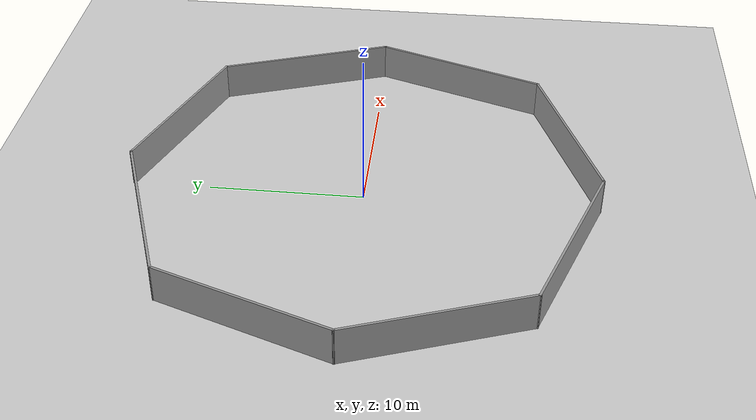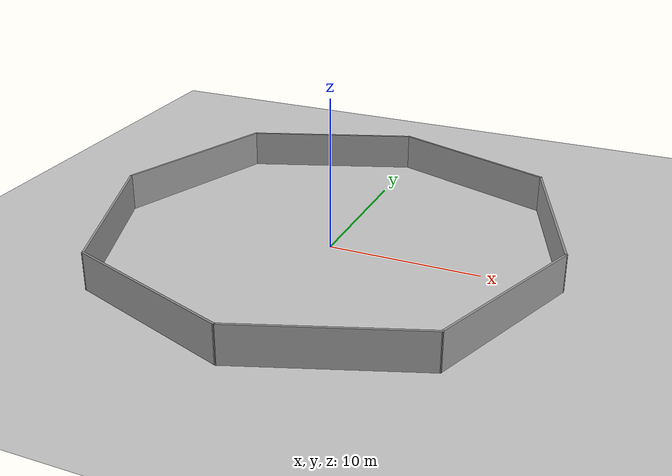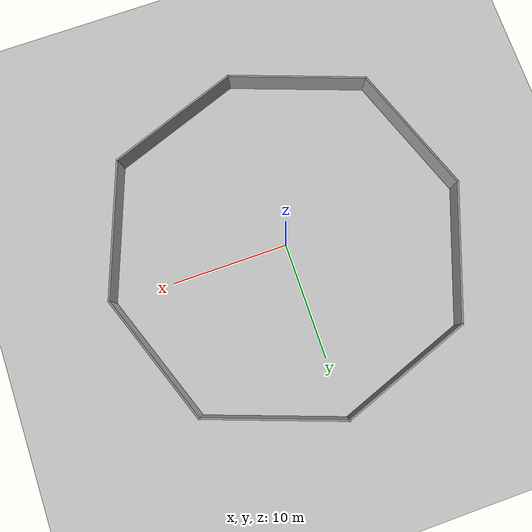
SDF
<?xml version="1.0" ?>
<sdf version="1.6">
	<world name="default">
		<include>
			<uri>model://ground_plane</uri>
		</include>
		<include>
			<uri>model://sun</uri>
		</include>

		<!-- Model -->
	    <model name="cat_octagon">
	      <include>
	            <static>true</static>
	        <uri>model://cat_octagon</uri>
	        <pose> 0 0 0 0 0 0</pose>
	      </include>
	    </model>

	    <!-- Plugin -->
   		<plugin name="cat_plugin" filename="libgazebo_tutorials.so"/>

	</world>
</sdf>

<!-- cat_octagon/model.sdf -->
<sdf version='1.6'>
  <model name='cat_octagon'>
    <pose frame=''>0 0 0 0 -0 0</pose>
    <link name='Wall_10'>
      <collision name='Wall_10_Collision'>
        <geometry>
          <box>
            <size>11.8547 0.15 2.5</size>
          </box>
        </geometry>
        <pose frame=''>0 0 1.25 0 -0 0</pose>
      </collision>
      <visual name='Wall_10_Visual'>
        <pose frame=''>0 0 1.25 0 -0 0</pose>
        <geometry>
          <box>
            <size>11.8547 0.15 2.5</size>
          </box>
        </geometry>
        <material>
          <script>
            <uri>file://media/materials/scripts/gazebo.material</uri>
            <name>Gazebo/Grey</name>
          </script>
          <ambient>1 1 1 1</ambient>
        </material>
        <meta>
          <layer>0</layer>
        </meta>
      </visual>
      <pose frame=''>5.5 13 0 0 -0 -0.348771</pose>
    </link>
    <link name='Wall_11'>
      <collision name='Wall_11_Collision'>
        <geometry>
          <box>
            <size>11.8547 0.15 2.5</size>
          </box>
        </geometry>
        <pose frame=''>0 0 1.25 0 -0 0</pose>
      </collision>
      <visual name='Wall_11_Visual'>
        <pose frame=''>0 0 1.25 0 -0 0</pose>
        <geometry>
          <box>
            <size>11.8547 0.15 2.5</size>
          </box>
        </geometry>
        <material>
          <script>
            <uri>file://media/materials/scripts/gazebo.material</uri>
            <name>Gazebo/Grey</name>
          </script>
          <ambient>1 1 1 1</ambient>
        </material>
        <meta>
          <layer>0</layer>
        </meta>
      </visual>
      <pose frame=''>13 5.5 0 0 -0 -1.22202</pose>
    </link>
    <link name='Wall_12'>
      <collision name='Wall_12_Collision'>
        <geometry>
          <box>
            <size>11.8547 0.15 2.5</size>
          </box>
        </geometry>
        <pose frame=''>0 0 1.25 0 -0 0</pose>
      </collision>
      <visual name='Wall_12_Visual'>
        <pose frame=''>0 0 1.25 0 -0 0</pose>
        <geometry>
          <box>
            <size>11.8547 0.15 2.5</size>
          </box>
        </geometry>
        <material>
          <script>
            <uri>file://media/materials/scripts/gazebo.material</uri>
            <name>Gazebo/Grey</name>
          </script>
          <ambient>1 1 1 1</ambient>
        </material>
        <meta>
          <layer>0</layer>
        </meta>
      </visual>
      <pose frame=''>13 -5.5 0 0 -0 -1.91957</pose>
    </link>
    <link name='Wall_13'>
      <collision name='Wall_13_Collision'>
        <geometry>
          <box>
            <size>11.8547 0.15 2.5</size>
          </box>
        </geometry>
        <pose frame=''>0 0 1.25 0 -0 0</pose>
      </collision>
      <visual name='Wall_13_Visual'>
        <pose frame=''>0 0 1.25 0 -0 0</pose>
        <geometry>
          <box>
            <size>11.8547 0.15 2.5</size>
          </box>
        </geometry>
        <material>
          <script>
            <uri>file://media/materials/scripts/gazebo.material</uri>
            <name>Gazebo/Grey</name>
          </script>
          <ambient>1 1 1 1</ambient>
        </material>
        <meta>
          <layer>0</layer>
        </meta>
      </visual>
      <pose frame=''>5.5 -13 0 0 -0 -2.79282</pose>
    </link>
    <link name='Wall_14'>
      <collision name='Wall_14_Collision'>
        <geometry>
          <box>
            <size>11.8547 0.15 2.5</size>
          </box>
        </geometry>
        <pose frame=''>0 0 1.25 0 -0 0</pose>
      </collision>
      <visual name='Wall_14_Visual'>
        <pose frame=''>0 0 1.25 0 -0 0</pose>
        <geometry>
          <box>
            <size>11.8547 0.15 2.5</size>
          </box>
        </geometry>
        <material>
          <script>
            <uri>file://media/materials/scripts/gazebo.material</uri>
            <name>Gazebo/Grey</name>
          </script>
          <ambient>1 1 1 1</ambient>
        </material>
        <meta>
          <layer>0</layer>
        </meta>
      </visual>
      <pose frame=''>-5.5 -13 0 0 -0 2.79282</pose>
    </link>
    <link name='Wall_15'>
      <collision name='Wall_15_Collision'>
        <geometry>
          <box>
            <size>11.8547 0.15 2.5</size>
          </box>
        </geometry>
        <pose frame=''>0 0 1.25 0 -0 0</pose>
      </collision>
      <visual name='Wall_15_Visual'>
        <pose frame=''>0 0 1.25 0 -0 0</pose>
        <geometry>
          <box>
            <size>11.8547 0.15 2.5</size>
          </box>
        </geometry>
        <material>
          <script>
            <uri>file://media/materials/scripts/gazebo.material</uri>
            <name>Gazebo/Grey</name>
          </script>
          <ambient>1 1 1 1</ambient>
        </material>
        <meta>
          <layer>0</layer>
        </meta>
      </visual>
      <pose frame=''>-13 -5.5 0 0 -0 1.91957</pose>
    </link>
    <link name='Wall_16'>
      <collision name='Wall_16_Collision'>
        <geometry>
          <box>
            <size>11.8547 0.15 2.5</size>
          </box>
        </geometry>
        <pose frame=''>0 0 1.25 0 -0 0</pose>
      </collision>
      <visual name='Wall_16_Visual'>
        <pose frame=''>0 0 1.25 0 -0 0</pose>
        <geometry>
          <box>
            <size>11.8547 0.15 2.5</size>
          </box>
        </geometry>
        <material>
          <script>
            <uri>file://media/materials/scripts/gazebo.material</uri>
            <name>Gazebo/Grey</name>
          </script>
          <ambient>1 1 1 1</ambient>
        </material>
        <meta>
          <layer>0</layer>
        </meta>
      </visual>
      <pose frame=''>-13 5.5 0 0 -0 1.22202</pose>
    </link>
    <link name='Wall_17'>
      <collision name='Wall_17_Collision'>
        <geometry>
          <box>
            <size>11.8547 0.15 2.5</size>
          </box>
        </geometry>
        <pose frame=''>0 0 1.25 0 -0 0</pose>
      </collision>
      <visual name='Wall_17_Visual'>
        <pose frame=''>0 0 1.25 0 -0 0</pose>
        <geometry>
          <box>
            <size>11.8547 0.15 2.5</size>
          </box>
        </geometry>
        <material>
          <script>
            <uri>file://media/materials/scripts/gazebo.material</uri>
            <name>Gazebo/Grey</name>
          </script>
          <ambient>1 1 1 1</ambient>
        </material>
        <meta>
          <layer>0</layer>
        </meta>
      </visual>
      <pose frame=''>-5.5 13 0 0 -0 0.348771</pose>
    </link>
    <static>1</static>
  </model>
</sdf>
